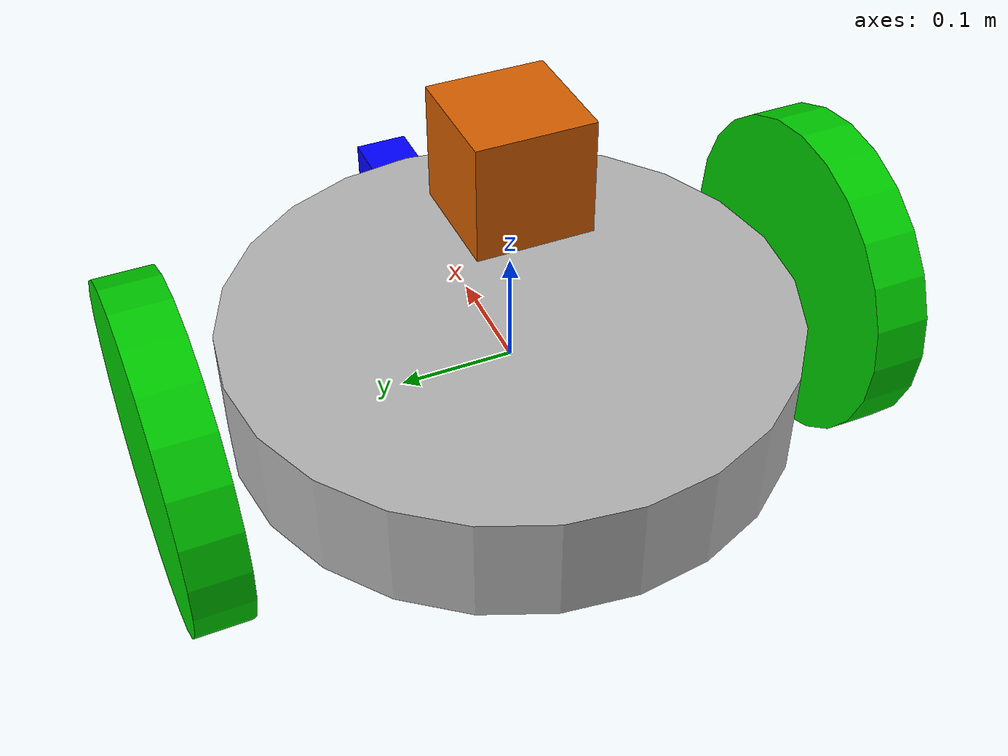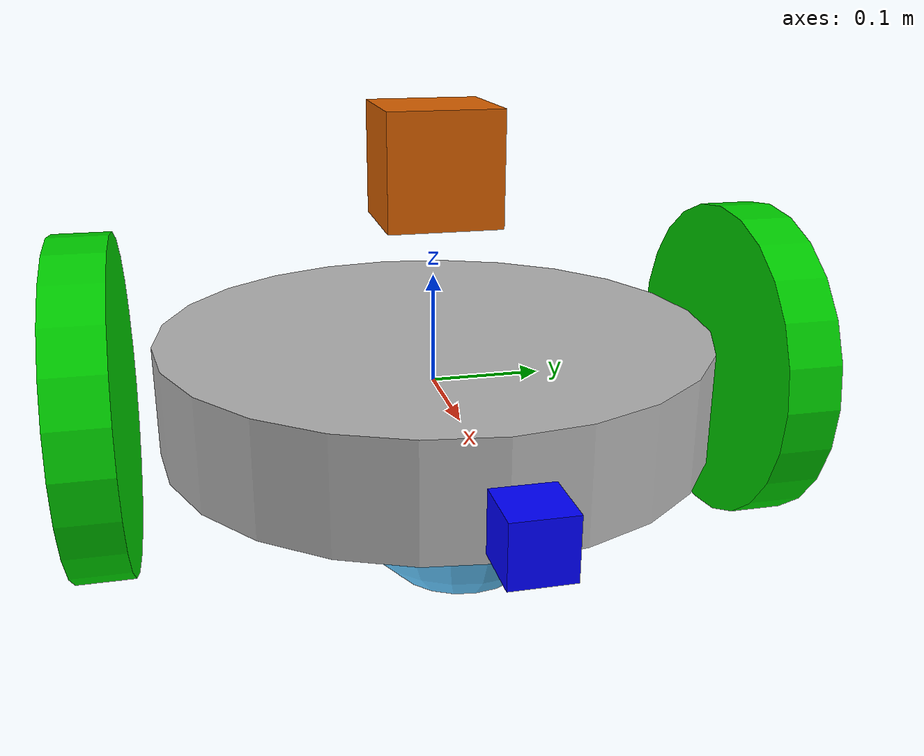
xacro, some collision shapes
<?xml version='1.0'?>

<robot name="my_bot" xmlns:xacro="http://www.ros.org/wiki/xacro">
  <xacro:include filename="$(find udacity_bot)/urdf/my_bot.gazebo" />
  <link name="robot_footprint"></link>

  <joint name="robot_footprint_joint" type="fixed">
    <origin xyz="0 0 0" rpy="0 0 0" />
    <parent link="robot_footprint"/>
    <child link="chassis" />
  </joint>

  <!-- Chassis Link -->
  <link name='chassis'>
    <pose>0 0 0.1 0 0 0</pose>

    <inertial>
      <mass value="10.0"/>
      <origin xyz="0.0 0 0" rpy=" 0 0 0"/>
      <inertia
          ixx="0.05" ixy="0" ixz="0"
          iyy="0.05" iyz="0"
          izz="0.05"
      />
    </inertial>

    <collision name='collision'>
      <origin xyz="0 0 0" rpy=" 0 0 0"/>
      <geometry>
        <cylinder radius="0.25" length="0.1"/>
      </geometry>
    </collision>

    <visual name='chassis_visual'>
      <origin xyz="0 0 0" rpy=" 0 0 0"/>
      <geometry>
        <cylinder radius="0.25" length="0.1"/>
      </geometry>
      <material name="gray">
        <color rgba="0.7 0.7 0.7 1.0"/>
      </material>
    </visual>

    <collision name='back_caster_collision'>
      <origin xyz="-0.1 0 -0.05" rpy=" 0 0 0"/>
      <geometry>
        <sphere radius="0.1"/>
      </geometry>

    </collision>

    <visual name='back_caster_visual'>
      <origin xyz="-0.1 0 -0.05" rpy=" 0 0 0"/>
      <geometry>
        <sphere radius="0.1"/>
      </geometry>
    </visual>

    <collision name='front_caster_collision'>
      <origin xyz="0.1 0 -0.05" rpy=" 0 0 0"/>
      <geometry>
        <sphere radius="0.1"/>
      </geometry>
    </collision>

    <visual name='front_caster_visual'>
      <origin xyz="0.1 0 -0.05" rpy=" 0 0 0"/>
      <geometry>
        <sphere radius="0.1"/>
      </geometry>
    </visual>

  </link>

  <!-- Left Wheel Link -->
  <link name='left_wheel'>

    <inertial>
      <mass value="5.0"/>
      <origin xyz="0.0 0 0" rpy=" 0 1.5707 1.5707"/>
      <inertia
          ixx="0.1" ixy="0" ixz="0"
          iyy="0.1" iyz="0"
          izz="0.1"
      />
    </inertial>

    <collision name='left_wheel_collision'>
      <origin xyz="0 0 0" rpy=" 0 1.5707 1.5707"/>
      <geometry>
        <cylinder length="0.05" radius="0.15"/>
      </geometry>
    </collision>

    <visual name='left_wheel_visual'>
      <origin xyz="0 0 0" rpy=" 0 1.5707 1.5707"/>
      <geometry>
        <cylinder length="0.05" radius="0.15"/>
      </geometry>
      <material name="green">
        <color rgba="0.0 0.8 0.0 1.0"/>
      </material>
    </visual>

  </link>

<!-- left wheel joint -->
<joint type="continuous" name="left_wheel_hinge">
    <origin xyz="0 0.3 0" rpy="0 0 0"/>
    <child link="left_wheel"/>
    <parent link="chassis"/>
    <axis xyz="0 1 0" rpy="0 0 0"/>
    <limit effort="10000" velocity="1000"/>
    <dynamics damping="1.0" friction="1.0"/>
  </joint>

<!-- Right Wheel Link -->
  <link name='right_wheel'>

    <inertial>
      <mass value="5.0"/>
      <origin xyz="0.0 0 0" rpy=" 0 1.5707 1.5707"/>
      <inertia
          ixx="0.1" ixy="0" ixz="0"
          iyy="0.1" iyz="0"
          izz="0.1"
      />
    </inertial>

    <collision name='right_wheel_collision'>
      <origin xyz="0 0 0" rpy=" 0 1.5707 1.5707"/>
      <geometry>
        <cylinder length="0.05" radius="0.15"/>
      </geometry>
    </collision>

    <visual name='right_wheel_visual'>
      <origin xyz="0 0 0" rpy=" 0 1.5707 1.5707"/>
      <geometry>
        <cylinder length="0.05" radius="0.15"/>
      </geometry>
      <material name="green">
        <color rgba="0.0 0.8 0.0 1.0"/>
      </material>
    </visual>

  </link>

<!-- right wheel joint -->
<joint type="continuous" name="right_wheel_hinge">
    <origin xyz="0 -0.3 0" rpy="0 0 0"/>
    <child link="right_wheel"/>
    <parent link="chassis"/>
    <axis xyz="0 1 0" rpy="0 0 0"/>
    <limit effort="10000" velocity="1000"/>
    <dynamics damping="1.0" friction="1.0"/>
  </joint>

  <!-- Camera Link -->
  <link name="camera">

    <inertial>
      <mass value="0.1"/>
      <origin xyz="0 0 0" rpy="0 0 0"/>
      <inertia
          ixx="1e-6" ixy="0" ixz="0"
          iyy="1e-6" iyz="0"
          izz="1e-6"
      />
    </inertial>
    <visual>
      <geometry>
        <box size="0.05 0.05 0.05"/>
      </geometry>
      <origin xyz="0 0 0" rpy="0 0 0"/>
      <material name="red">
        <color rgba="0 0 1 1"/>
      </material>
    </visual>
    <collision>
      <geometry>
        <box size="0.05 0.05 0.05"/>
      </geometry>
      <origin xyz="0 0 0" rpy="0 0 0"/>
    </collision>
  </link>

  <!-- camera joint -->
  <joint type="fixed" name="camera_joint">
    <origin xyz="0.3 0 0" rpy="0 0 0"/>
    <child link="camera"/>
    <parent link="chassis"/>
  </joint>

  <!-- Hokuyo Link -->
  <link name="hokuyo">

    <inertial>
      <mass value="0.1"/>
      <origin xyz="0 0 0" rpy="0 0 0"/>
      <inertia
          ixx="1e-6" ixy="0" ixz="0"
          iyy="1e-6" iyz="0"
          izz="1e-6"
      />
    </inertial>
    <visual>
      <geometry>
        <mesh filename="package://udacity_bot/meshes/hokuyo.dae"/>
      </geometry>
      <origin xyz="0 0 0" rpy="0 0 0"/>
    </visual>
    <collision>
      <geometry>
        <box size="0.1 0.1 0.1"/>
      </geometry>
      <origin xyz="0 0 0" rpy="0 0 0"/>
    </collision>
  </link>

  <!-- Hokuyo joint -->
  <joint type="fixed" name="hokuyo_joint">
    <origin xyz="0.0 0.0 0.2" rpy="0 0 0"/>
    <child link="hokuyo"/>
    <parent link="chassis"/>
  </joint>

</robot>
